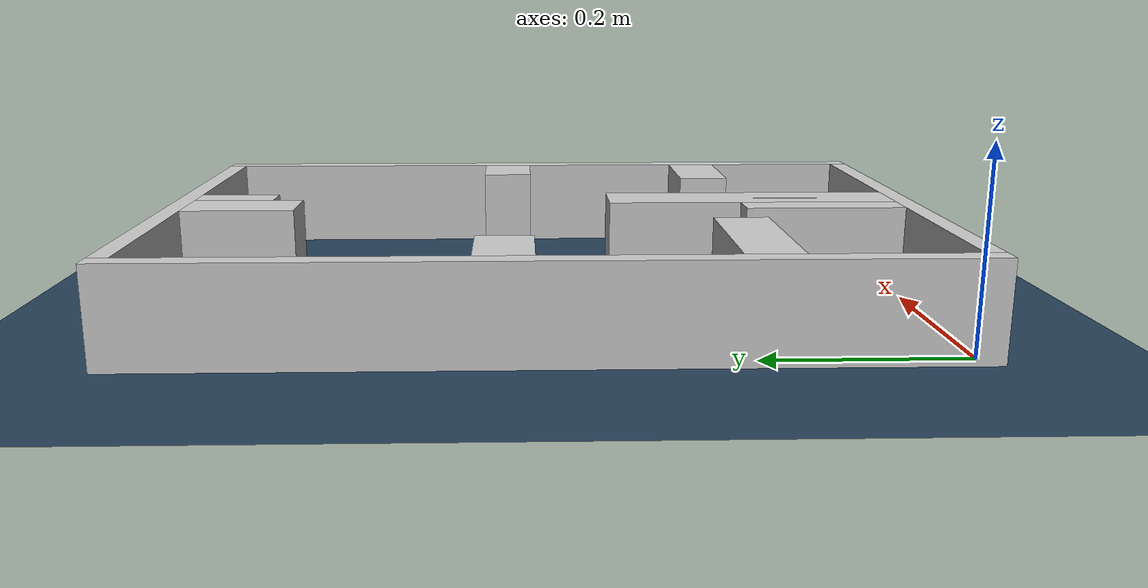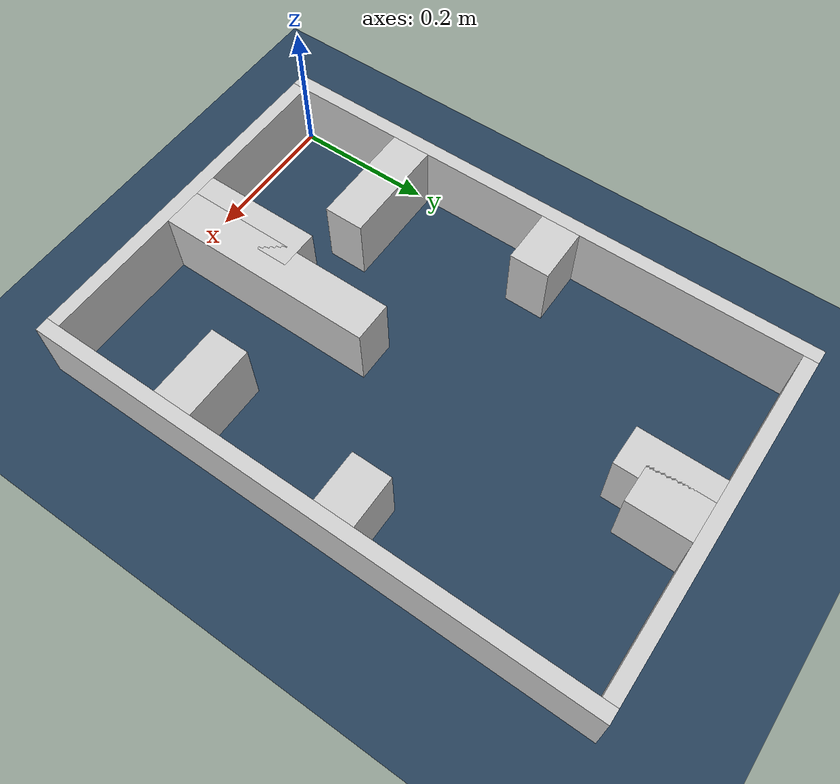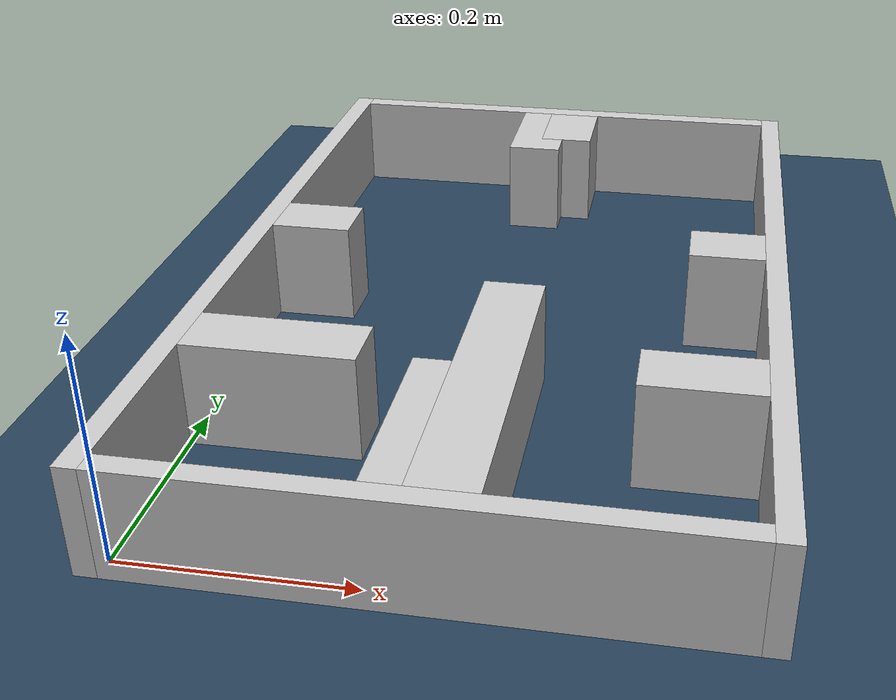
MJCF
<?xml version="1.0" ?>
<mujoco model="generated_real_template">
  <compiler angle="degree"/>
  <option timestep="0.002" integrator="implicitfast" iterations="100" cone="elliptic"/>
  <default>
    <geom density="1"/>
  </default>
  <asset>
    <texture builtin="gradient" height="3072" rgb1="0.3 0.5 0.7" rgb2="0 0 0" type="skybox" width="512"/>
    <texture builtin="checker" height="300" mark="edge" markrgb="0.8 0.8 0.8" name="groundplane" rgb1="0.2 0.3 0.4" rgb2="0.1 0.2 0.3" type="2d" width="300"/>
    <material name="groundplane" reflectance="0.2" texrepeat="5 5" texture="groundplane" texuniform="true"/>
  </asset>
  <worldbody>
    <light dir="0 0 -1" directional="true" pos="0 0 1.5"/>
    <geom name="floor" type="plane" condim="4" friction="0.5 0.005 0.001" material="groundplane" size="0 0 0.05"/>
    <body name="walls">
      <geom name="wall_boundary_left" type="box" condim="4" friction="1.0 0.005 0.0001" rgba="0.8 0.8 0.8 1" pos="-0.010000 0.387500 0.050000" euler="0 0 0.000000" size="0.010000 0.407500 0.050000"/>
      <geom name="wall_boundary_right" type="box" condim="4" friction="1.0 0.005 0.0001" rgba="0.8 0.8 0.8 1" pos="0.500000 0.387500 0.050000" euler="0 0 0.000000" size="0.010000 0.407500 0.050000"/>
      <geom name="wall_boundary_bottom" type="box" condim="4" friction="1.0 0.005 0.0001" rgba="0.8 0.8 0.8 1" pos="0.245000 -0.010000 0.050000" euler="0 0 0.000000" size="0.245000 0.010000 0.050000"/>
      <geom name="wall_boundary_top" type="box" condim="4" friction="1.0 0.005 0.0001" rgba="0.8 0.8 0.8 1" pos="0.245000 0.785000 0.050000" euler="0 0 0.000000" size="0.245000 0.010000 0.050000"/>
      <geom name="wall_inner_1_1" type="box" condim="4" friction="1.0 0.005 0.0001" rgba="0.8 0.8 0.8 1" pos="0.261998 0.158057 0.050000" euler="0 0 90.000000" size="0.158057 0.028500 0.050000"/>
      <geom name="wall_inner_1_2" type="box" condim="4" friction="1.0 0.005 0.0001" rgba="0.8 0.8 0.8 1" pos="0.261998 0.731557 0.050000" euler="0 0 90.000000" size="0.043443 0.028500 0.050000"/>
      <geom name="wall_inner_2_1" type="box" condim="4" friction="1.0 0.005 0.0001" rgba="0.8 0.8 0.8 1" pos="0.039404 0.429741 0.050000" euler="0 0 0.000000" size="0.039404 0.028500 0.050000"/>
      <geom name="wall_inner_2_2" type="box" condim="4" friction="1.0 0.005 0.0001" rgba="0.8 0.8 0.8 1" pos="0.453648 0.429741 0.050000" euler="0 0 0.000000" size="0.036352 0.028500 0.050000"/>
      <geom name="wall_inner_3_1" type="box" condim="4" friction="1.0 0.005 0.0001" rgba="0.8 0.8 0.8 1" pos="0.077521 0.187512 0.050000" euler="0 0 0.000000" size="0.077521 0.028500 0.050000"/>
      <geom name="wall_inner_3_2" type="box" condim="4" friction="1.0 0.005 0.0001" rgba="0.8 0.8 0.8 1" pos="0.437396 0.187512 0.050000" euler="0 0 0.000000" size="0.052604 0.028500 0.050000"/>
      <geom name="wall_inner_4_1" type="box" condim="4" friction="1.0 0.005 0.0001" rgba="0.8 0.8 0.8 1" pos="0.229042 0.085790 0.050000" euler="0 0 90.000000" size="0.085790 0.028500 0.050000"/>
      <geom name="wall_inner_4_2" type="box" condim="4" friction="1.0 0.005 0.0001" rgba="0.8 0.8 0.8 1" pos="0.229042 0.714757 0.050000" euler="0 0 90.000000" size="0.060243 0.028500 0.050000"/>
    </body>
  </worldbody>
</mujoco>
